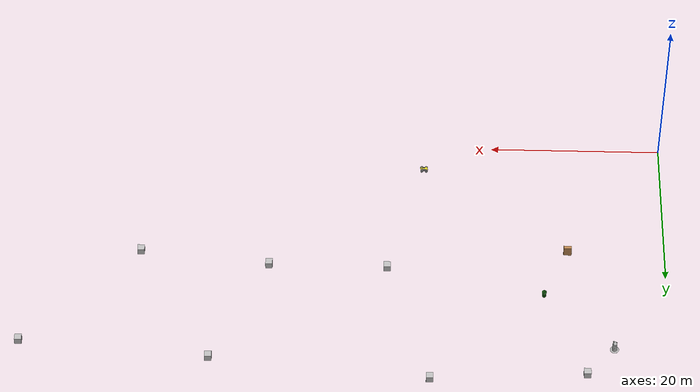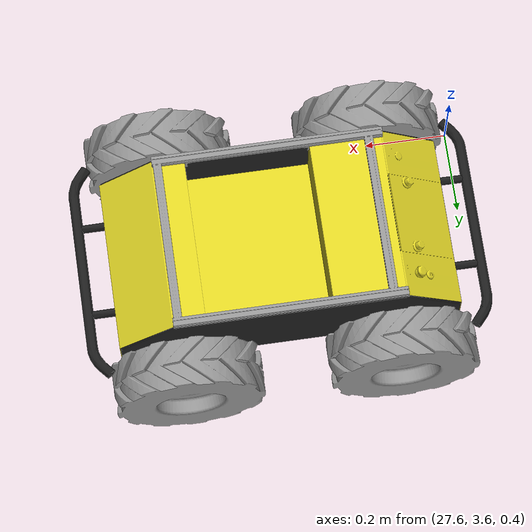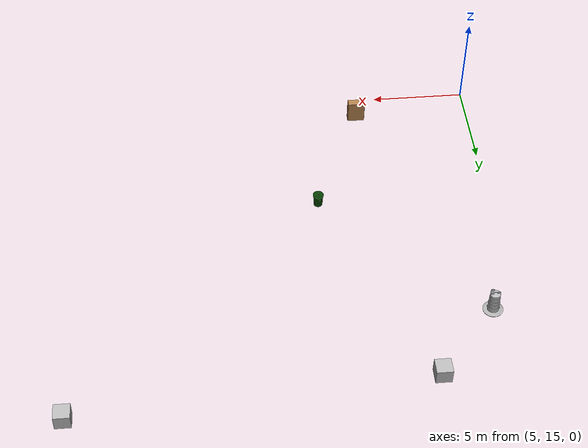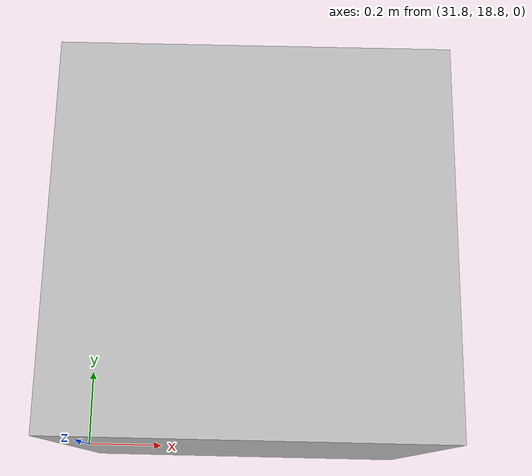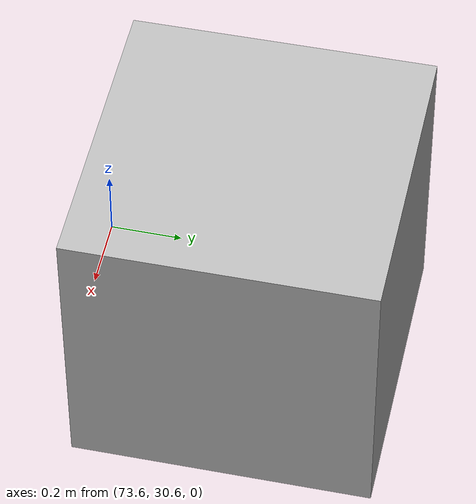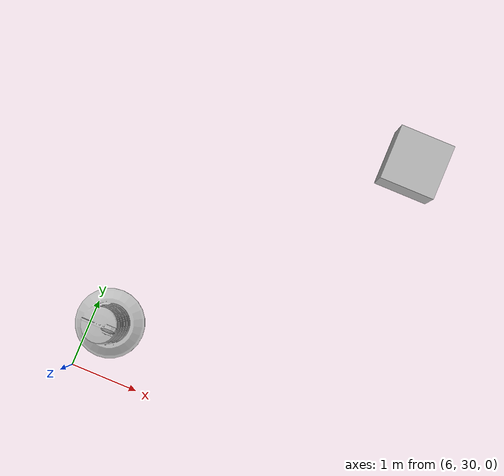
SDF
<sdf version="1.4">
 <world name="default">
  <scene>
   <ambient>0.68 0.68 0.68 1.0</ambient>
   <shadows>false</shadows>
   <sky><clouds><speed>12</speed></clouds></sky>
   <light name="sun" type="point">
    <pose>10 10 3 0 -0 0</pose>
    <diffuse>0.8 0.8 0.8 1</diffuse>
    <specular>0.2 0.2 0.2 1</specular>
    <attenuation>
     <range>100000</range>
     <constant>0.9</constant>
     <linear>0.01</linear>
     <quadratic>0.001</quadratic>
    </attenuation>
   </light>
  </scene>
  <physics type="ode">
   <max_step_size>0.001</max_step_size>
   <real_time_factor>1</real_time_factor>
   <real_time_update_rate>1000</real_time_update_rate>
   <gravity>0 0 -9.8</gravity>
  </physics>
  <include><uri>model://sun</uri></include>
  <model name="bookshelf">
   <static>1</static>
   <link name="link">
    <inertial><mass>1</mass></inertial>
    <collision name="back">
     <pose>0 0.005 0.6 0 -0 0</pose>
     <geometry><box><size>0.9 0.01 1.2</size></box></geometry>
    </collision>
    <visual name="visual1">
     <pose>0 0.005 0.6 0 -0 0</pose>
     <geometry><box><size>0.9 0.01 1.2</size></box></geometry>
     <material>
      <script><uri>file://media/materials/scripts/gazebo.material</uri><name>Gazebo/Wood</name></script>
     </material>
    </visual>
    <collision name="left_side">
     <pose>0.45 -0.195 0.6 0 -0 0</pose>
     <geometry><box><size>0.02 0.4 1.2</size></box></geometry>
    </collision>
    <visual name="visual2">
     <pose>0.45 -0.195 0.6 0 -0 0</pose>
     <geometry><box><size>0.02 0.4 1.2</size></box></geometry>
     <material>
      <script><uri>file://media/materials/scripts/gazebo.material</uri><name>Gazebo/Wood</name></script>
     </material>
    </visual>
    <collision name="right_side">
     <pose>-0.45 -0.195 0.6 0 -0 0</pose>
     <geometry><box><size>0.02 0.4 1.2</size></box></geometry>
    </collision>
    <visual name="visual3">
     <pose>-0.45 -0.195 0.6 0 -0 0</pose>
     <geometry><box><size>0.02 0.4 1.2</size></box></geometry>
     <material>
      <script><uri>file://media/materials/scripts/gazebo.material</uri><name>Gazebo/Wood</name></script>
     </material>
    </visual>
    <collision name="bottom">
     <pose>0 -0.195 0.03 0 -0 0</pose>
     <geometry><box><size>0.88 0.4 0.06</size></box></geometry>
    </collision>
    <visual name="visual4">
     <pose>0 -0.195 0.03 0 -0 0</pose>
     <geometry><box><size>0.88 0.4 0.06</size></box></geometry>
     <material>
      <script><uri>file://media/materials/scripts/gazebo.material</uri><name>Gazebo/Wood</name></script>
     </material>
    </visual>
    <collision name="top">
     <pose>0 -0.195 1.19 0 -0 0</pose>
     <geometry><box><size>0.88 0.4 0.02</size></box></geometry>
    </collision>
    <visual name="visual5">
     <pose>0 -0.195 1.19 0 -0 0</pose>
     <geometry><box><size>0.88 0.4 0.02</size></box></geometry>
     <material>
      <script><uri>file://media/materials/scripts/gazebo.material</uri><name>Gazebo/Wood</name></script>
     </material>
    </visual>
    <collision name="low_shelf">
     <pose>0 -0.195 0.43 0 -0 0</pose>
     <geometry><box><size>0.88 0.4 0.02</size></box></geometry>
    </collision>
    <visual name="visual6">
     <pose>0 -0.195 0.43 0 -0 0</pose>
     <geometry><box><size>0.88 0.4 0.02</size></box></geometry>
     <material>
      <script><uri>file://media/materials/scripts/gazebo.material</uri><name>Gazebo/Wood</name></script>
     </material>
    </visual>
    <collision name="high_shelf">
     <pose>0 -0.195 0.8 0 -0 0</pose>
     <geometry><box><size>0.88 0.4 0.02</size></box></geometry>
    </collision>
    <visual name="visual7">
     <pose>0 -0.195 0.8 0 -0 0</pose>
     <geometry><box><size>0.88 0.4 0.02</size></box></geometry>
     <material>
      <script><uri>file://media/materials/scripts/gazebo.material</uri><name>Gazebo/Wood</name></script>
     </material>
    </visual>
   </link>
   <pose>11.2747 16.6312 0 0 -0 0</pose>
  </model>
  <model name="Construction Barrel">
   <link name="link">
    <inertial>
     <pose>0 0 0.4 0 -0 0</pose>
     <mass>500</mass>
     <inertia><ixx>51.2096</ixx><iyy>51.2096</iyy><izz>25</izz><ixy>0</ixy><ixz>0</ixz><iyz>0</iyz></inertia>
    </inertial>
    <collision name="collision">
     <geometry><mesh><uri>model://construction_barrel/meshes/construction_barrel.dae</uri></mesh></geometry>
    </collision>
    <visual name="visual">
     <geometry><mesh><uri>model://construction_barrel/meshes/construction_barrel.dae</uri></mesh></geometry>
    </visual>
   </link>
   <pose>6.27259 30.7619 0 0 -0 0</pose>
  </model>
  <model name="first_2015_trash_can">
   <link name="link">
    <inertial>
     <pose>0 0 0.3683 0 -0 0</pose>
     <mass>4.83076</mass>
     <inertia>
      <ixx>0.281534</ixx>
      <ixy>0</ixy>
      <ixz>0</ixz>
      <iyy>0.281534</iyy>
      <iyz>0</iyz>
      <izz>0.126223</izz>
     </inertia>
    </inertial>
    <visual name="visual">
     <geometry><mesh><uri>model://first_2015_trash_can/meshes/trash_can.dae</uri></mesh></geometry>
    </visual>
    <collision name="collision">
     <geometry><mesh><uri>model://first_2015_trash_can/meshes/trash_can.dae</uri></mesh></geometry>
    </collision>
   </link>
   <pose>14.1069 22.9411 0 0 -0 0</pose>
  </model>
  <model name="husky">
   <static>1</static>
   <pose>28.0611 3.89752 0.5 0 -0 0</pose>
   <link name="base_link">
    <collision name="collision">
     <pose>0 0 0.1 0 -0 0</pose>
     <geometry><box><size>1.0074 0.5709 0.2675</size></box></geometry>
    </collision>
    <inertial>
     <mass>33.855</mass>
     <pose>-0.085613 -0.00084 0.238145 0 -0 0</pose>
     <inertia>
      <ixx>2.2343</ixx>
      <ixy>-0.023642</ixy>
      <ixz>0.275174</ixz>
      <iyy>3.42518</iyy>
      <iyz>0.00239624</iyz>
      <izz>2.1241</izz>
     </inertia>
    </inertial>
    <visual name="base">
     <geometry><mesh><uri>model://husky/meshes/base_link.stl</uri></mesh></geometry>
     <material><script><name>Gazebo/FlatBlack</name><uri>__default__</uri></script></material>
    </visual>
    <visual name="top_plate">
     <geometry><mesh><uri>model://husky/meshes/top_plate.stl</uri></mesh></geometry>
     <material><script><name>Gazebo/Yellow</name><uri>__default__</uri></script></material>
    </visual>
    <visual name="front_bumper">
     <pose>0.47 0 0.091 0 -0 0</pose>
     <geometry><mesh><uri>model://husky/meshes/bumper.stl</uri></mesh></geometry>
     <material><script><name>Gazebo/FlatBlack</name><uri>__default__</uri></script></material>
    </visual>
    <visual name="rear_bumper">
     <pose>-0.47 0 0.091 0 -0 3.141</pose>
     <geometry><mesh><uri>model://husky/meshes/bumper.stl</uri></mesh></geometry>
     <material><script><name>Gazebo/FlatBlack</name><uri>__default__</uri></script></material>
    </visual>
    <visual name="user_rail">
     <pose>0.272 0 0.245 0 -0 0</pose>
     <geometry><mesh><uri>model://husky/meshes/user_rail.stl</uri></mesh></geometry>
     <material><script><name>Gazebo/Grey</name><uri>__default__</uri></script></material>
    </visual>
   </link>
   <link name="back_left_wheel">
    <pose>-0.256 0.285475 0.035 0 -0 0</pose>
    <inertial>
     <mass>2.6357</mass>
     <inertia>
      <ixx>0.0246688</ixx>
      <ixy>0</ixy>
      <ixz>0</ixz>
      <iyy>0.0246688</iyy>
      <iyz>0</iyz>
      <izz>0.0441058</izz>
     </inertia>
    </inertial>
    <collision name="back_left_wheel_collision">
     <pose>0 0 0 -1.5707 0 0</pose>
     <geometry><cylinder><radius>0.17775</radius><length>0.1143</length></cylinder></geometry>
     <surface>
      <friction><ode><mu>100000</mu><mu2>100000</mu2><slip1>0</slip1><slip2>0</slip2></ode></friction>
     </surface>
    </collision>
    <visual name="back_left_wheel">
     <pose>0 0 0 -3.14159 0 0</pose>
     <geometry><mesh><uri>model://husky/meshes/wheel.stl</uri></mesh></geometry>
     <material><script><name>Gazebo/Grey</name><uri>__default__</uri></script></material>
    </visual>
   </link>
   <joint name="back_left_joint" type="revolute">
    <parent>base_link</parent>
    <child>back_left_wheel</child>
    <axis>
     <xyz expressed_in="__model__">0 1 0</xyz>
     <limit><lower>-1e+16</lower><upper>1e+16</upper></limit>
     <dynamics><spring_reference>0</spring_reference><spring_stiffness>0</spring_stiffness></dynamics>
    </axis>
    <physics><ode><limit><cfm>0</cfm><erp>0.9</erp></limit></ode></physics>
   </joint>
   <link name="back_right_wheel">
    <pose>-0.256 -0.285475 0.035 0 -0 0</pose>
    <inertial>
     <mass>2.6357</mass>
     <inertia>
      <ixx>0.0246688</ixx>
      <ixy>0</ixy>
      <ixz>0</ixz>
      <iyy>0.0246688</iyy>
      <iyz>0</iyz>
      <izz>0.0441058</izz>
     </inertia>
    </inertial>
    <collision name="back_right_wheel_collision">
     <pose>0 0 0 -1.5707 0 0</pose>
     <geometry><cylinder><radius>0.17775</radius><length>0.1143</length></cylinder></geometry>
     <surface>
      <friction><ode><mu>100000</mu><mu2>100000</mu2><slip1>0</slip1><slip2>0</slip2></ode></friction>
     </surface>
    </collision>
    <visual name="back_right_wheel">
     <pose>0 0 0 -3.14159 0 0</pose>
     <geometry><mesh><uri>model://husky/meshes/wheel.stl</uri></mesh></geometry>
     <material><script><name>Gazebo/Grey</name><uri>__default__</uri></script></material>
    </visual>
   </link>
   <joint name="back_right_joint" type="revolute">
    <parent>base_link</parent>
    <child>back_right_wheel</child>
    <axis>
     <xyz expressed_in="__model__">0 1 0</xyz>
     <limit><lower>-1e+16</lower><upper>1e+16</upper></limit>
     <dynamics><spring_reference>0</spring_reference><spring_stiffness>0</spring_stiffness></dynamics>
    </axis>
    <physics><ode><limit><cfm>0</cfm><erp>0.9</erp></limit></ode></physics>
   </joint>
   <link name="front_left_wheel">
    <pose>0.256 0.285475 0.035 0 -0 0</pose>
    <inertial>
     <mass>2.6357</mass>
     <inertia>
      <ixx>0.0246688</ixx>
      <ixy>0</ixy>
      <ixz>0</ixz>
      <iyy>0.0246688</iyy>
      <iyz>0</iyz>
      <izz>0.0441058</izz>
     </inertia>
    </inertial>
    <collision name="front_left_wheel_collision">
     <pose>0 0 0 -1.5707 0 0</pose>
     <geometry><cylinder><radius>0.17775</radius><length>0.1143</length></cylinder></geometry>
     <surface>
      <friction><ode><mu>100000</mu><mu2>100000</mu2><slip1>0</slip1><slip2>0</slip2></ode></friction>
     </surface>
    </collision>
    <visual name="front_left_wheel">
     <pose>0 0 0 -3.14159 0 0</pose>
     <geometry><mesh><uri>model://husky/meshes/wheel.stl</uri></mesh></geometry>
     <material><script><name>Gazebo/Grey</name><uri>__default__</uri></script></material>
    </visual>
   </link>
   <joint name="front_left_joint" type="revolute">
    <parent>base_link</parent>
    <child>front_left_wheel</child>
    <axis>
     <xyz expressed_in="__model__">0 1 0</xyz>
     <limit><lower>-1e+16</lower><upper>1e+16</upper></limit>
     <dynamics><spring_reference>0</spring_reference><spring_stiffness>0</spring_stiffness></dynamics>
    </axis>
    <physics><ode><limit><cfm>0</cfm><erp>0.9</erp></limit></ode></physics>
   </joint>
   <link name="front_right_wheel">
    <pose>0.256 -0.285475 0.035 0 -0 0</pose>
    <inertial>
     <mass>2.6357</mass>
     <inertia>
      <ixx>0.0246688</ixx>
      <ixy>0</ixy>
      <ixz>0</ixz>
      <iyy>0.0246688</iyy>
      <iyz>0</iyz>
      <izz>0.0441058</izz>
     </inertia>
    </inertial>
    <collision name="front_right_wheel_collision">
     <pose>0 0 0 -1.5707 0 0</pose>
     <geometry><cylinder><radius>0.17775</radius><length>0.1143</length></cylinder></geometry>
     <surface>
      <friction><ode><mu>100000</mu><mu2>100000</mu2><slip1>0</slip1><slip2>0</slip2></ode></friction>
     </surface>
    </collision>
    <visual name="front_right_wheel">
     <pose>0 0 0 -3.14159 0 0</pose>
     <geometry><mesh><uri>model://husky/meshes/wheel.stl</uri></mesh></geometry>
     <material><script><name>Gazebo/Grey</name><uri>__default__</uri></script></material>
    </visual>
   </link>
   <joint name="front_right_joint" type="revolute">
    <parent>base_link</parent>
    <child>front_right_wheel</child>
    <axis>
     <xyz expressed_in="__model__">0 1 0</xyz>
     <limit><lower>-1e+16</lower><upper>1e+16</upper></limit>
     <dynamics><spring_reference>0</spring_reference><spring_stiffness>0</spring_stiffness></dynamics>
    </axis>
    <physics><ode><limit><cfm>0</cfm><erp>0.9</erp></limit></ode></physics>
   </joint>
  </model>
  <model name="number1">
   <pose>60.9012 17.2596 0.4 0 -0 0</pose>
   <static>1</static>
   <link name="link">
    <visual name="visual">
     <geometry><mesh><uri>model://number1/meshes/number.dae</uri></mesh></geometry>
     <material>
      <script>
       <uri>model://number1/materials/scripts</uri>
       <uri>model://number1/materials/textures</uri>
       <name>Number/One</name>
      </script>
     </material>
    </visual>
   </link>
  </model>
  <model name="number2">
   <pose>9.44029 34.5293 0.4 0 -0 0</pose>
   <static>1</static>
   <link name="link">
    <visual name="visual">
     <geometry><mesh><uri>model://number1/meshes/number.dae</uri></mesh></geometry>
     <material>
      <script>
       <uri>model://number2/materials/scripts</uri>
       <uri>model://number2/materials/textures</uri>
       <name>Number/Two</name>
      </script>
     </material>
    </visual>
   </link>
  </model>
  <model name="number3">
   <pose>27.2148 35.5902 0.4 0 -0 0</pose>
   <static>1</static>
   <link name="link">
    <visual name="visual">
     <geometry><mesh><uri>model://number1/meshes/number.dae</uri></mesh></geometry>
     <material>
      <script>
       <uri>model://number3/materials/scripts</uri>
       <uri>model://number3/materials/textures</uri>
       <name>Number/Three</name>
      </script>
     </material>
    </visual>
   </link>
  </model>
  <model name="number4">
   <pose>45.9414 19.0434 0.4 0 -0 0</pose>
   <static>1</static>
   <link name="link">
    <visual name="visual">
     <geometry><mesh><uri>model://number1/meshes/number.dae</uri></mesh></geometry>
     <material>
      <script>
       <uri>model://number4/materials/scripts</uri>
       <uri>model://number4/materials/textures</uri>
       <name>Number/Four</name>
      </script>
     </material>
    </visual>
   </link>
  </model>
  <model name="number5">
   <pose>73.968 31.0796 0.4 0 -0 0</pose>
   <static>1</static>
   <link name="link">
    <visual name="visual">
     <geometry><mesh><uri>model://number1/meshes/number.dae</uri></mesh></geometry>
     <material>
      <script>
       <uri>model://number5/materials/scripts</uri>
       <uri>model://number5/materials/textures</uri>
       <name>Number/Five</name>
      </script>
     </material>
    </visual>
   </link>
  </model>
  <model name="number6">
   <pose>32.2349 19.176 0.4 0 -0 0</pose>
   <static>1</static>
   <link name="link">
    <visual name="visual">
     <geometry><mesh><uri>model://number1/meshes/number.dae</uri></mesh></geometry>
     <material>
      <script>
       <uri>model://number6/materials/scripts</uri>
       <uri>model://number6/materials/textures</uri>
       <name>Number/Six</name>
      </script>
     </material>
    </visual>
   </link>
  </model>
  <model name="number7">
   <pose>52.2856 33.0746 0.4 0 -0 0</pose>
   <static>1</static>
   <link name="link">
    <visual name="visual">
     <geometry><mesh><uri>model://number1/meshes/number.dae</uri></mesh></geometry>
     <material>
      <script>
       <uri>model://number7/materials/scripts</uri>
       <uri>model://number7/materials/textures</uri>
       <name>Number/Seven</name>
      </script>
     </material>
    </visual>
   </link>
  </model>
 </world>
</sdf>
